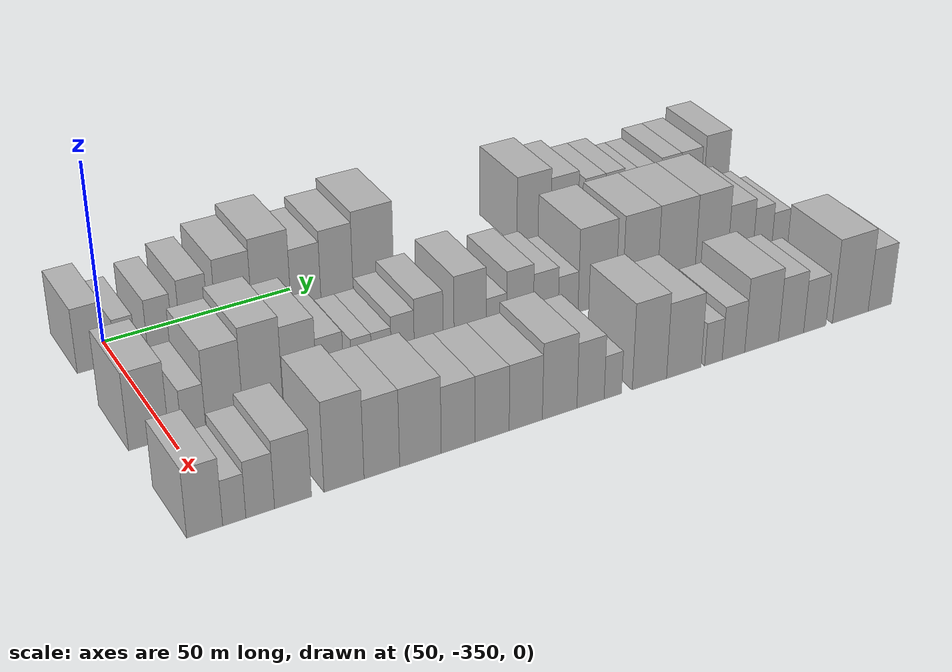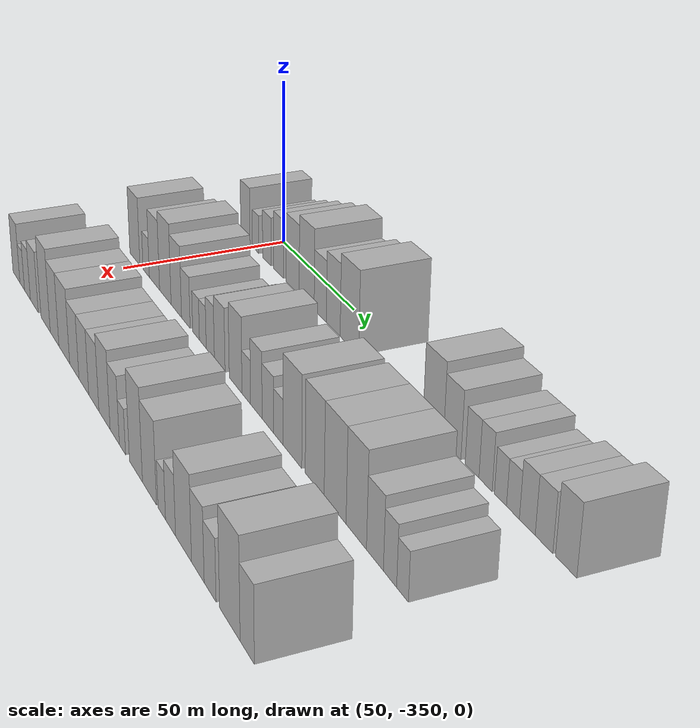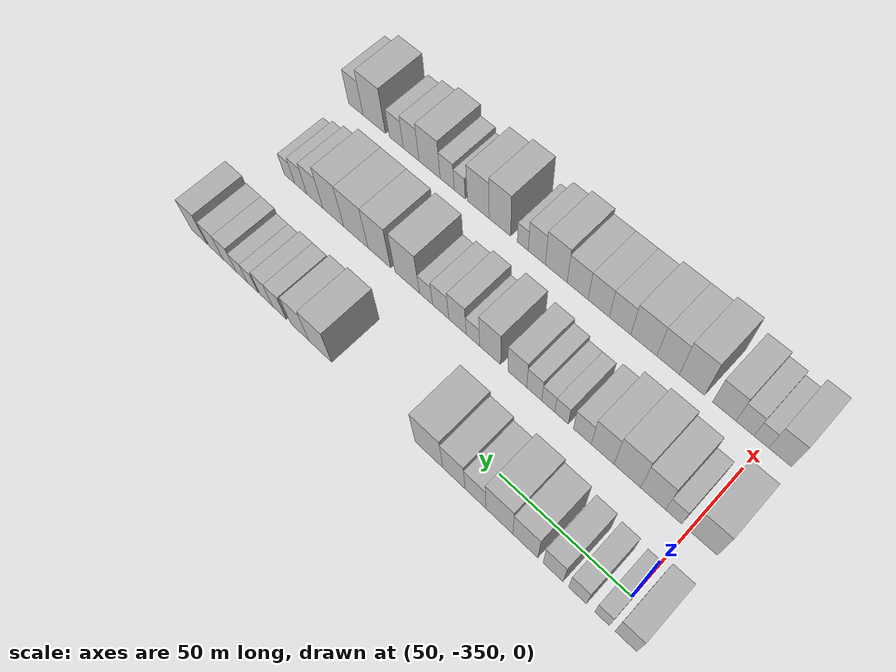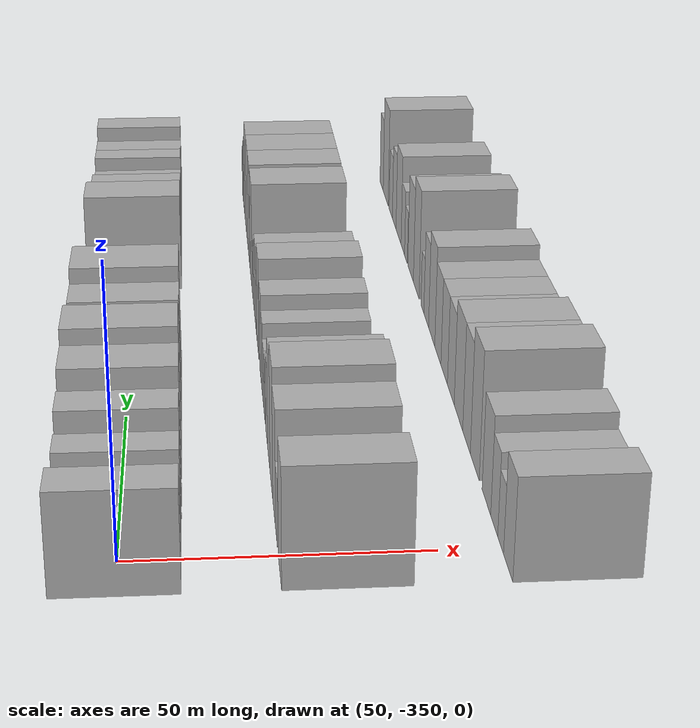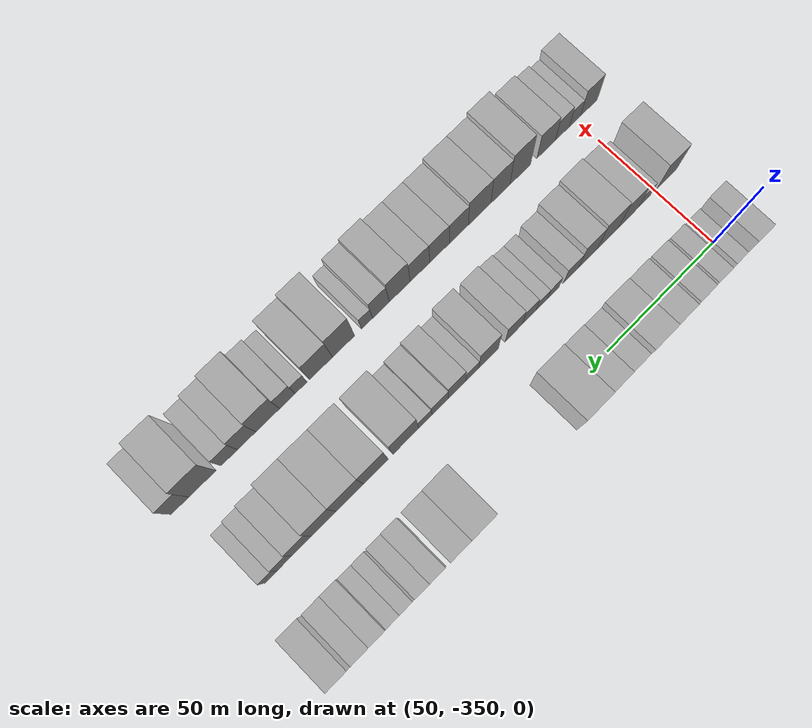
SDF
<sdf version="1.6">
 <world name="default">
  <model name="building_1">
   <static>1</static>
   <pose>50.0000 -356.2087 0 0.000000 0.000000 0.000000</pose>
   <link name="link">
    <pose>0 0 9.00 0 0 0</pose>
    <collision name="collision"><geometry><box><size>20.0000 7.5826 18.0000</size></box></geometry></collision>
    <visual name="visual">
     <cast_shadows>0</cast_shadows>
     <geometry><box><size>20.0000 7.5826 18.0000</size></box></geometry>
     <material>
      <script>
       <uri>model://HANNAS_wall/materials/scripts</uri>
       <uri>model://HANNAS_wall/materials/textures</uri>
       <name>vrc/HANNAS_wall</name>
      </script>
     </material>
    </visual>
   </link>
  </model>
  <model name="building_2">
   <static>1</static>
   <pose>50.0000 -347.7883 0 0.000000 0.000000 0.000000</pose>
   <link name="link">
    <pose>0 0 6.00 0 0 0</pose>
    <collision name="collision"><geometry><box><size>20.0000 5.2582 12.0000</size></box></geometry></collision>
    <visual name="visual">
     <cast_shadows>0</cast_shadows>
     <geometry><box><size>20.0000 5.2582 12.0000</size></box></geometry>
     <material>
      <script>
       <uri>model://HANNAS_wall/materials/scripts</uri>
       <uri>model://HANNAS_wall/materials/textures</uri>
       <name>vrc/HANNAS_wall</name>
      </script>
     </material>
    </visual>
   </link>
  </model>
  <model name="building_3">
   <static>1</static>
   <pose>50.0000 -338.8902 0 0.000000 0.000000 0.000000</pose>
   <link name="link">
    <pose>0 0 7.50 0 0 0</pose>
    <collision name="collision"><geometry><box><size>20.0000 6.5379 15.0000</size></box></geometry></collision>
    <visual name="visual">
     <cast_shadows>0</cast_shadows>
     <geometry><box><size>20.0000 6.5379 15.0000</size></box></geometry>
     <material>
      <script>
       <uri>model://HANNAS_wall/materials/scripts</uri>
       <uri>model://HANNAS_wall/materials/textures</uri>
       <name>vrc/HANNAS_wall</name>
      </script>
     </material>
    </visual>
   </link>
  </model>
  <model name="building_4">
   <static>1</static>
   <pose>50.0000 -329.9099 0 0.000000 0.000000 0.000000</pose>
   <link name="link">
    <pose>0 0 9.00 0 0 0</pose>
    <collision name="collision"><geometry><box><size>20.0000 7.4226 18.0000</size></box></geometry></collision>
    <visual name="visual">
     <cast_shadows>0</cast_shadows>
     <geometry><box><size>20.0000 7.4226 18.0000</size></box></geometry>
     <material>
      <script>
       <uri>model://HANNAS_wall/materials/scripts</uri>
       <uri>model://HANNAS_wall/materials/textures</uri>
       <name>vrc/HANNAS_wall</name>
      </script>
     </material>
    </visual>
   </link>
  </model>
  <model name="building_5">
   <static>1</static>
   <pose>50.0000 -319.4293 0 0.000000 0.000000 0.000000</pose>
   <link name="link">
    <pose>0 0 10.50 0 0 0</pose>
    <collision name="collision"><geometry><box><size>20.0000 9.5387 21.0000</size></box></geometry></collision>
    <visual name="visual">
     <cast_shadows>0</cast_shadows>
     <geometry><box><size>20.0000 9.5387 21.0000</size></box></geometry>
     <material>
      <script>
       <uri>model://HANNAS_wall/materials/scripts</uri>
       <uri>model://HANNAS_wall/materials/textures</uri>
       <name>vrc/HANNAS_wall</name>
      </script>
     </material>
    </visual>
   </link>
  </model>
  <model name="building_6">
   <static>1</static>
   <pose>50.0000 -309.4172 0 0.000000 0.000000 0.000000</pose>
   <link name="link">
    <pose>0 0 12.00 0 0 0</pose>
    <collision name="collision"><geometry><box><size>20.0000 10.4856 24.0000</size></box></geometry></collision>
    <visual name="visual">
     <cast_shadows>0</cast_shadows>
     <geometry><box><size>20.0000 10.4856 24.0000</size></box></geometry>
     <material>
      <script>
       <uri>model://HANNAS_wall/materials/scripts</uri>
       <uri>model://HANNAS_wall/materials/textures</uri>
       <name>vrc/HANNAS_wall</name>
      </script>
     </material>
    </visual>
   </link>
  </model>
  <model name="building_7">
   <static>1</static>
   <pose>50.0000 -300.0538 0 0.000000 0.000000 0.000000</pose>
   <link name="link">
    <pose>0 0 9.00 0 0 0</pose>
    <collision name="collision"><geometry><box><size>20.0000 8.2411 18.0000</size></box></geometry></collision>
    <visual name="visual">
     <cast_shadows>0</cast_shadows>
     <geometry><box><size>20.0000 8.2411 18.0000</size></box></geometry>
     <material>
      <script>
       <uri>model://HANNAS_wall/materials/scripts</uri>
       <uri>model://HANNAS_wall/materials/textures</uri>
       <name>vrc/HANNAS_wall</name>
      </script>
     </material>
    </visual>
   </link>
  </model>
  <model name="building_8">
   <static>1</static>
   <pose>50.0000 -291.4383 0 0.000000 0.000000 0.000000</pose>
   <link name="link">
    <pose>0 0 10.50 0 0 0</pose>
    <collision name="collision"><geometry><box><size>20.0000 8.9898 21.0000</size></box></geometry></collision>
    <visual name="visual">
     <cast_shadows>0</cast_shadows>
     <geometry><box><size>20.0000 8.9898 21.0000</size></box></geometry>
     <material>
      <script>
       <uri>model://HANNAS_wall/materials/scripts</uri>
       <uri>model://HANNAS_wall/materials/textures</uri>
       <name>vrc/HANNAS_wall</name>
      </script>
     </material>
    </visual>
   </link>
  </model>
  <model name="building_9">
   <static>1</static>
   <pose>50.0000 -281.1544 0 0.000000 0.000000 0.000000</pose>
   <link name="link">
    <pose>0 0 12.00 0 0 0</pose>
    <collision name="collision"><geometry><box><size>20.0000 11.5780 24.0000</size></box></geometry></collision>
    <visual name="visual">
     <cast_shadows>0</cast_shadows>
     <geometry><box><size>20.0000 11.5780 24.0000</size></box></geometry>
     <material>
      <script>
       <uri>model://HANNAS_wall/materials/scripts</uri>
       <uri>model://HANNAS_wall/materials/textures</uri>
       <name>vrc/HANNAS_wall</name>
      </script>
     </material>
    </visual>
   </link>
  </model>
  <model name="building_10">
   <static>1</static>
   <pose>50.0000 -233.7191 0 0.000000 0.000000 0.000000</pose>
   <link name="link">
    <pose>0 0 10.50 0 0 0</pose>
    <collision name="collision"><geometry><box><size>20.0000 10.4308 21.0000</size></box></geometry></collision>
    <visual name="visual">
     <cast_shadows>0</cast_shadows>
     <geometry><box><size>20.0000 10.4308 21.0000</size></box></geometry>
     <material>
      <script>
       <uri>model://HANNAS_wall/materials/scripts</uri>
       <uri>model://HANNAS_wall/materials/textures</uri>
       <name>vrc/HANNAS_wall</name>
      </script>
     </material>
    </visual>
   </link>
  </model>
  <model name="building_11">
   <static>1</static>
   <pose>50.0000 -224.2286 0 0.000000 0.000000 0.000000</pose>
   <link name="link">
    <pose>0 0 9.00 0 0 0</pose>
    <collision name="collision"><geometry><box><size>20.0000 8.5502 18.0000</size></box></geometry></collision>
    <visual name="visual">
     <cast_shadows>0</cast_shadows>
     <geometry><box><size>20.0000 8.5502 18.0000</size></box></geometry>
     <material>
      <script>
       <uri>model://HANNAS_wall/materials/scripts</uri>
       <uri>model://HANNAS_wall/materials/textures</uri>
       <name>vrc/HANNAS_wall</name>
      </script>
     </material>
    </visual>
   </link>
  </model>
  <model name="building_12">
   <static>1</static>
   <pose>50.0000 -214.7280 0 0.000000 0.000000 0.000000</pose>
   <link name="link">
    <pose>0 0 7.50 0 0 0</pose>
    <collision name="collision"><geometry><box><size>20.0000 6.4510 15.0000</size></box></geometry></collision>
    <visual name="visual">
     <cast_shadows>0</cast_shadows>
     <geometry><box><size>20.0000 6.4510 15.0000</size></box></geometry>
     <material>
      <script>
       <uri>model://HANNAS_wall/materials/scripts</uri>
       <uri>model://HANNAS_wall/materials/textures</uri>
       <name>vrc/HANNAS_wall</name>
      </script>
     </material>
    </visual>
   </link>
  </model>
  <model name="building_13">
   <static>1</static>
   <pose>50.0000 -208.4955 0 0.000000 0.000000 0.000000</pose>
   <link name="link">
    <pose>0 0 7.50 0 0 0</pose>
    <collision name="collision"><geometry><box><size>20.0000 6.0138 15.0000</size></box></geometry></collision>
    <visual name="visual">
     <cast_shadows>0</cast_shadows>
     <geometry><box><size>20.0000 6.0138 15.0000</size></box></geometry>
     <material>
      <script>
       <uri>model://HANNAS_wall/materials/scripts</uri>
       <uri>model://HANNAS_wall/materials/textures</uri>
       <name>vrc/HANNAS_wall</name>
      </script>
     </material>
    </visual>
   </link>
  </model>
  <model name="building_14">
   <static>1</static>
   <pose>50.0000 -201.8346 0 0.000000 0.000000 0.000000</pose>
   <link name="link">
    <pose>0 0 6.00 0 0 0</pose>
    <collision name="collision"><geometry><box><size>20.0000 5.3080 12.0000</size></box></geometry></collision>
    <visual name="visual">
     <cast_shadows>0</cast_shadows>
     <geometry><box><size>20.0000 5.3080 12.0000</size></box></geometry>
     <material>
      <script>
       <uri>model://HANNAS_wall/materials/scripts</uri>
       <uri>model://HANNAS_wall/materials/textures</uri>
       <name>vrc/HANNAS_wall</name>
      </script>
     </material>
    </visual>
   </link>
  </model>
  <model name="building_15">
   <static>1</static>
   <pose>50.0000 -196.4232 0 0.000000 0.000000 0.000000</pose>
   <link name="link">
    <pose>0 0 6.00 0 0 0</pose>
    <collision name="collision"><geometry><box><size>20.0000 5.5147 12.0000</size></box></geometry></collision>
    <visual name="visual">
     <cast_shadows>0</cast_shadows>
     <geometry><box><size>20.0000 5.5147 12.0000</size></box></geometry>
     <material>
      <script>
       <uri>model://HANNAS_wall/materials/scripts</uri>
       <uri>model://HANNAS_wall/materials/textures</uri>
       <name>vrc/HANNAS_wall</name>
      </script>
     </material>
    </visual>
   </link>
  </model>
  <model name="building_16">
   <static>1</static>
   <pose>50.0000 -190.3855 0 0.000000 0.000000 0.000000</pose>
   <link name="link">
    <pose>0 0 7.50 0 0 0</pose>
    <collision name="collision"><geometry><box><size>20.0000 6.5609 15.0000</size></box></geometry></collision>
    <visual name="visual">
     <cast_shadows>0</cast_shadows>
     <geometry><box><size>20.0000 6.5609 15.0000</size></box></geometry>
     <material>
      <script>
       <uri>model://HANNAS_wall/materials/scripts</uri>
       <uri>model://HANNAS_wall/materials/textures</uri>
       <name>vrc/HANNAS_wall</name>
      </script>
     </material>
    </visual>
   </link>
  </model>
  <model name="building_17">
   <static>1</static>
   <pose>50.0000 -183.5652 0 0.000000 0.000000 0.000000</pose>
   <link name="link">
    <pose>0 0 7.50 0 0 0</pose>
    <collision name="collision"><geometry><box><size>20.0000 7.0797 15.0000</size></box></geometry></collision>
    <visual name="visual">
     <cast_shadows>0</cast_shadows>
     <geometry><box><size>20.0000 7.0797 15.0000</size></box></geometry>
     <material>
      <script>
       <uri>model://HANNAS_wall/materials/scripts</uri>
       <uri>model://HANNAS_wall/materials/textures</uri>
       <name>vrc/HANNAS_wall</name>
      </script>
     </material>
    </visual>
   </link>
  </model>
  <model name="building_18">
   <static>1</static>
   <pose>50.0000 -174.9120 0 0.000000 0.000000 0.000000</pose>
   <link name="link">
    <pose>0 0 9.00 0 0 0</pose>
    <collision name="collision"><geometry><box><size>20.0000 8.2267 18.0000</size></box></geometry></collision>
    <visual name="visual">
     <cast_shadows>0</cast_shadows>
     <geometry><box><size>20.0000 8.2267 18.0000</size></box></geometry>
     <material>
      <script>
       <uri>model://HANNAS_wall/materials/scripts</uri>
       <uri>model://HANNAS_wall/materials/textures</uri>
       <name>vrc/HANNAS_wall</name>
      </script>
     </material>
    </visual>
   </link>
  </model>
  <model name="building_78">
   <static>1</static>
   <pose>85.0000 -355.1636 0 0.000000 0.000000 0.000000</pose>
   <link name="link">
    <pose>0 0 10.50 0 0 0</pose>
    <collision name="collision"><geometry><box><size>20.0000 9.6728 21.0000</size></box></geometry></collision>
    <visual name="visual">
     <cast_shadows>0</cast_shadows>
     <geometry><box><size>20.0000 9.6728 21.0000</size></box></geometry>
     <material>
      <script>
       <uri>model://HANNAS_wall/materials/scripts</uri>
       <uri>model://HANNAS_wall/materials/textures</uri>
       <name>vrc/HANNAS_wall</name>
      </script>
     </material>
    </visual>
   </link>
  </model>
  <model name="building_79">
   <static>1</static>
   <pose>85.0000 -344.3812 0 0.000000 0.000000 0.000000</pose>
   <link name="link">
    <pose>0 0 6.00 0 0 0</pose>
    <collision name="collision"><geometry><box><size>20.0000 5.8922 12.0000</size></box></geometry></collision>
    <visual name="visual">
     <cast_shadows>0</cast_shadows>
     <geometry><box><size>20.0000 5.8922 12.0000</size></box></geometry>
     <material>
      <script>
       <uri>model://HANNAS_wall/materials/scripts</uri>
       <uri>model://HANNAS_wall/materials/textures</uri>
       <name>vrc/HANNAS_wall</name>
      </script>
     </material>
    </visual>
   </link>
  </model>
  <model name="building_80">
   <static>1</static>
   <pose>85.0000 -336.8071 0 0.000000 0.000000 0.000000</pose>
   <link name="link">
    <pose>0 0 10.50 0 0 0</pose>
    <collision name="collision"><geometry><box><size>20.0000 9.2560 21.0000</size></box></geometry></collision>
    <visual name="visual">
     <cast_shadows>0</cast_shadows>
     <geometry><box><size>20.0000 9.2560 21.0000</size></box></geometry>
     <material>
      <script>
       <uri>model://HANNAS_wall/materials/scripts</uri>
       <uri>model://HANNAS_wall/materials/textures</uri>
       <name>vrc/HANNAS_wall</name>
      </script>
     </material>
    </visual>
   </link>
  </model>
  <model name="building_81">
   <static>1</static>
   <pose>85.0000 -327.1585 0 0.000000 0.000000 0.000000</pose>
   <link name="link">
    <pose>0 0 12.00 0 0 0</pose>
    <collision name="collision"><geometry><box><size>20.0000 10.0411 24.0000</size></box></geometry></collision>
    <visual name="visual">
     <cast_shadows>0</cast_shadows>
     <geometry><box><size>20.0000 10.0411 24.0000</size></box></geometry>
     <material>
      <script>
       <uri>model://HANNAS_wall/materials/scripts</uri>
       <uri>model://HANNAS_wall/materials/textures</uri>
       <name>vrc/HANNAS_wall</name>
      </script>
     </material>
    </visual>
   </link>
  </model>
  <model name="building_82">
   <static>1</static>
   <pose>85.0000 -317.7506 0 0.000000 0.000000 0.000000</pose>
   <link name="link">
    <pose>0 0 10.50 0 0 0</pose>
    <collision name="collision"><geometry><box><size>20.0000 8.7748 21.0000</size></box></geometry></collision>
    <visual name="visual">
     <cast_shadows>0</cast_shadows>
     <geometry><box><size>20.0000 8.7748 21.0000</size></box></geometry>
     <material>
      <script>
       <uri>model://HANNAS_wall/materials/scripts</uri>
       <uri>model://HANNAS_wall/materials/textures</uri>
       <name>vrc/HANNAS_wall</name>
      </script>
     </material>
    </visual>
   </link>
  </model>
  <model name="building_83">
   <static>1</static>
   <pose>85.0000 -309.8581 0 0.000000 0.000000 0.000000</pose>
   <link name="link">
    <pose>0 0 7.50 0 0 0</pose>
    <collision name="collision"><geometry><box><size>20.0000 7.0102 15.0000</size></box></geometry></collision>
    <visual name="visual">
     <cast_shadows>0</cast_shadows>
     <geometry><box><size>20.0000 7.0102 15.0000</size></box></geometry>
     <material>
      <script>
       <uri>model://HANNAS_wall/materials/scripts</uri>
       <uri>model://HANNAS_wall/materials/textures</uri>
       <name>vrc/HANNAS_wall</name>
      </script>
     </material>
    </visual>
   </link>
  </model>
  <model name="building_84">
   <static>1</static>
   <pose>85.0000 -301.6786 0 0.000000 0.000000 0.000000</pose>
   <link name="link">
    <pose>0 0 6.00 0 0 0</pose>
    <collision name="collision"><geometry><box><size>20.0000 5.3486 12.0000</size></box></geometry></collision>
    <visual name="visual">
     <cast_shadows>0</cast_shadows>
     <geometry><box><size>20.0000 5.3486 12.0000</size></box></geometry>
     <material>
      <script>
       <uri>model://HANNAS_wall/materials/scripts</uri>
       <uri>model://HANNAS_wall/materials/textures</uri>
       <name>vrc/HANNAS_wall</name>
      </script>
     </material>
    </visual>
   </link>
  </model>
  <model name="building_85">
   <static>1</static>
   <pose>85.0000 -296.3774 0 0.000000 0.000000 0.000000</pose>
   <link name="link">
    <pose>0 0 6.00 0 0 0</pose>
    <collision name="collision"><geometry><box><size>20.0000 5.2538 12.0000</size></box></geometry></collision>
    <visual name="visual">
     <cast_shadows>0</cast_shadows>
     <geometry><box><size>20.0000 5.2538 12.0000</size></box></geometry>
     <material>
      <script>
       <uri>model://HANNAS_wall/materials/scripts</uri>
       <uri>model://HANNAS_wall/materials/textures</uri>
       <name>vrc/HANNAS_wall</name>
      </script>
     </material>
    </visual>
   </link>
  </model>
  <model name="building_86">
   <static>1</static>
   <pose>85.0000 -290.6680 0 0.000000 0.000000 0.000000</pose>
   <link name="link">
    <pose>0 0 7.50 0 0 0</pose>
    <collision name="collision"><geometry><box><size>20.0000 6.1652 15.0000</size></box></geometry></collision>
    <visual name="visual">
     <cast_shadows>0</cast_shadows>
     <geometry><box><size>20.0000 6.1652 15.0000</size></box></geometry>
     <material>
      <script>
       <uri>model://HANNAS_wall/materials/scripts</uri>
       <uri>model://HANNAS_wall/materials/textures</uri>
       <name>vrc/HANNAS_wall</name>
      </script>
     </material>
    </visual>
   </link>
  </model>
  <model name="building_87">
   <static>1</static>
   <pose>85.0000 -283.6698 0 0.000000 0.000000 0.000000</pose>
   <link name="link">
    <pose>0 0 9.00 0 0 0</pose>
    <collision name="collision"><geometry><box><size>20.0000 7.8310 18.0000</size></box></geometry></collision>
    <visual name="visual">
     <cast_shadows>0</cast_shadows>
     <geometry><box><size>20.0000 7.8310 18.0000</size></box></geometry>
     <material>
      <script>
       <uri>model://HANNAS_wall/materials/scripts</uri>
       <uri>model://HANNAS_wall/materials/textures</uri>
       <name>vrc/HANNAS_wall</name>
      </script>
     </material>
    </visual>
   </link>
  </model>
  <model name="building_88">
   <static>1</static>
   <pose>85.0000 -272.3083 0 0.000000 0.000000 0.000000</pose>
   <link name="link">
    <pose>0 0 10.50 0 0 0</pose>
    <collision name="collision"><geometry><box><size>20.0000 8.8920 21.0000</size></box></geometry></collision>
    <visual name="visual">
     <cast_shadows>0</cast_shadows>
     <geometry><box><size>20.0000 8.8920 21.0000</size></box></geometry>
     <material>
      <script>
       <uri>model://HANNAS_wall/materials/scripts</uri>
       <uri>model://HANNAS_wall/materials/textures</uri>
       <name>vrc/HANNAS_wall</name>
      </script>
     </material>
    </visual>
   </link>
  </model>
  <model name="building_89">
   <static>1</static>
   <pose>85.0000 -264.9860 0 0.000000 0.000000 0.000000</pose>
   <link name="link">
    <pose>0 0 6.00 0 0 0</pose>
    <collision name="collision"><geometry><box><size>20.0000 5.7527 12.0000</size></box></geometry></collision>
    <visual name="visual">
     <cast_shadows>0</cast_shadows>
     <geometry><box><size>20.0000 5.7527 12.0000</size></box></geometry>
     <material>
      <script>
       <uri>model://HANNAS_wall/materials/scripts</uri>
       <uri>model://HANNAS_wall/materials/textures</uri>
       <name>vrc/HANNAS_wall</name>
      </script>
     </material>
    </visual>
   </link>
  </model>
  <model name="building_90">
   <static>1</static>
   <pose>85.0000 -258.3056 0 0.000000 0.000000 0.000000</pose>
   <link name="link">
    <pose>0 0 9.00 0 0 0</pose>
    <collision name="collision"><geometry><box><size>20.0000 7.6083 18.0000</size></box></geometry></collision>
    <visual name="visual">
     <cast_shadows>0</cast_shadows>
     <geometry><box><size>20.0000 7.6083 18.0000</size></box></geometry>
     <material>
      <script>
       <uri>model://HANNAS_wall/materials/scripts</uri>
       <uri>model://HANNAS_wall/materials/textures</uri>
       <name>vrc/HANNAS_wall</name>
      </script>
     </material>
    </visual>
   </link>
  </model>
  <model name="building_91">
   <static>1</static>
   <pose>85.0000 -250.9110 0 0.000000 0.000000 0.000000</pose>
   <link name="link">
    <pose>0 0 7.50 0 0 0</pose>
    <collision name="collision"><geometry><box><size>20.0000 7.1808 15.0000</size></box></geometry></collision>
    <visual name="visual">
     <cast_shadows>0</cast_shadows>
     <geometry><box><size>20.0000 7.1808 15.0000</size></box></geometry>
     <material>
      <script>
       <uri>model://HANNAS_wall/materials/scripts</uri>
       <uri>model://HANNAS_wall/materials/textures</uri>
       <name>vrc/HANNAS_wall</name>
      </script>
     </material>
    </visual>
   </link>
  </model>
  <model name="building_92">
   <static>1</static>
   <pose>85.0000 -244.4038 0 0.000000 0.000000 0.000000</pose>
   <link name="link">
    <pose>0 0 6.00 0 0 0</pose>
    <collision name="collision"><geometry><box><size>20.0000 5.8337 12.0000</size></box></geometry></collision>
    <visual name="visual">
     <cast_shadows>0</cast_shadows>
     <geometry><box><size>20.0000 5.8337 12.0000</size></box></geometry>
     <material>
      <script>
       <uri>model://HANNAS_wall/materials/scripts</uri>
       <uri>model://HANNAS_wall/materials/textures</uri>
       <name>vrc/HANNAS_wall</name>
      </script>
     </material>
    </visual>
   </link>
  </model>
  <model name="building_93">
   <static>1</static>
   <pose>85.0000 -235.8939 0 0.000000 0.000000 0.000000</pose>
   <link name="link">
    <pose>0 0 12.00 0 0 0</pose>
    <collision name="collision"><geometry><box><size>20.0000 11.1860 24.0000</size></box></geometry></collision>
    <visual name="visual">
     <cast_shadows>0</cast_shadows>
     <geometry><box><size>20.0000 11.1860 24.0000</size></box></geometry>
     <material>
      <script>
       <uri>model://HANNAS_wall/materials/scripts</uri>
       <uri>model://HANNAS_wall/materials/textures</uri>
       <name>vrc/HANNAS_wall</name>
      </script>
     </material>
    </visual>
   </link>
  </model>
  <model name="building_94">
   <static>1</static>
   <pose>85.0000 -223.0156 0 0.000000 0.000000 0.000000</pose>
   <link name="link">
    <pose>0 0 12.00 0 0 0</pose>
    <collision name="collision"><geometry><box><size>20.0000 10.5706 24.0000</size></box></geometry></collision>
    <visual name="visual">
     <cast_shadows>0</cast_shadows>
     <geometry><box><size>20.0000 10.5706 24.0000</size></box></geometry>
     <material>
      <script>
       <uri>model://HANNAS_wall/materials/scripts</uri>
       <uri>model://HANNAS_wall/materials/textures</uri>
       <name>vrc/HANNAS_wall</name>
      </script>
     </material>
    </visual>
   </link>
  </model>
  <model name="building_95">
   <static>1</static>
   <pose>85.0000 -211.9395 0 0.000000 0.000000 0.000000</pose>
   <link name="link">
    <pose>0 0 12.00 0 0 0</pose>
    <collision name="collision"><geometry><box><size>20.0000 11.5815 24.0000</size></box></geometry></collision>
    <visual name="visual">
     <cast_shadows>0</cast_shadows>
     <geometry><box><size>20.0000 11.5815 24.0000</size></box></geometry>
     <material>
      <script>
       <uri>model://HANNAS_wall/materials/scripts</uri>
       <uri>model://HANNAS_wall/materials/textures</uri>
       <name>vrc/HANNAS_wall</name>
      </script>
     </material>
    </visual>
   </link>
  </model>
  <model name="building_96">
   <static>1</static>
   <pose>85.0000 -201.0471 0 0.000000 0.000000 0.000000</pose>
   <link name="link">
    <pose>0 0 12.00 0 0 0</pose>
    <collision name="collision"><geometry><box><size>20.0000 10.2033 24.0000</size></box></geometry></collision>
    <visual name="visual">
     <cast_shadows>0</cast_shadows>
     <geometry><box><size>20.0000 10.2033 24.0000</size></box></geometry>
     <material>
      <script>
       <uri>model://HANNAS_wall/materials/scripts</uri>
       <uri>model://HANNAS_wall/materials/textures</uri>
       <name>vrc/HANNAS_wall</name>
      </script>
     </material>
    </visual>
   </link>
  </model>
  <model name="building_97">
   <static>1</static>
   <pose>85.0000 -191.9038 0 0.000000 0.000000 0.000000</pose>
   <link name="link">
    <pose>0 0 9.00 0 0 0</pose>
    <collision name="collision"><geometry><box><size>20.0000 8.0834 18.0000</size></box></geometry></collision>
    <visual name="visual">
     <cast_shadows>0</cast_shadows>
     <geometry><box><size>20.0000 8.0834 18.0000</size></box></geometry>
     <material>
      <script>
       <uri>model://HANNAS_wall/materials/scripts</uri>
       <uri>model://HANNAS_wall/materials/textures</uri>
       <name>vrc/HANNAS_wall</name>
      </script>
     </material>
    </visual>
   </link>
  </model>
  <model name="building_98">
   <static>1</static>
   <pose>85.0000 -184.8117 0 0.000000 0.000000 0.000000</pose>
   <link name="link">
    <pose>0 0 7.50 0 0 0</pose>
    <collision name="collision"><geometry><box><size>20.0000 6.1007 15.0000</size></box></geometry></collision>
    <visual name="visual">
     <cast_shadows>0</cast_shadows>
     <geometry><box><size>20.0000 6.1007 15.0000</size></box></geometry>
     <material>
      <script>
       <uri>model://HANNAS_wall/materials/scripts</uri>
       <uri>model://HANNAS_wall/materials/textures</uri>
       <name>vrc/HANNAS_wall</name>
      </script>
     </material>
    </visual>
   </link>
  </model>
  <model name="building_99">
   <static>1</static>
   <pose>85.0000 -179.1264 0 0.000000 0.000000 0.000000</pose>
   <link name="link">
    <pose>0 0 6.00 0 0 0</pose>
    <collision name="collision"><geometry><box><size>20.0000 5.2697 12.0000</size></box></geometry></collision>
    <visual name="visual">
     <cast_shadows>0</cast_shadows>
     <geometry><box><size>20.0000 5.2697 12.0000</size></box></geometry>
     <material>
      <script>
       <uri>model://HANNAS_wall/materials/scripts</uri>
       <uri>model://HANNAS_wall/materials/textures</uri>
       <name>vrc/HANNAS_wall</name>
      </script>
     </material>
    </visual>
   </link>
  </model>
  <model name="building_164">
   <static>1</static>
   <pose>120.0000 -355.9063 0 0.000000 0.000000 0.000000</pose>
   <link name="link">
    <pose>0 0 9.00 0 0 0</pose>
    <collision name="collision"><geometry><box><size>20.0000 8.1875 18.0000</size></box></geometry></collision>
    <visual name="visual">
     <cast_shadows>0</cast_shadows>
     <geometry><box><size>20.0000 8.1875 18.0000</size></box></geometry>
     <material>
      <script>
       <uri>model://HANNAS_wall/materials/scripts</uri>
       <uri>model://HANNAS_wall/materials/textures</uri>
       <name>vrc/HANNAS_wall</name>
      </script>
     </material>
    </visual>
   </link>
  </model>
  <model name="building_165">
   <static>1</static>
   <pose>120.0000 -349.1351 0 0.000000 0.000000 0.000000</pose>
   <link name="link">
    <pose>0 0 6.00 0 0 0</pose>
    <collision name="collision"><geometry><box><size>20.0000 5.3548 12.0000</size></box></geometry></collision>
    <visual name="visual">
     <cast_shadows>0</cast_shadows>
     <geometry><box><size>20.0000 5.3548 12.0000</size></box></geometry>
     <material>
      <script>
       <uri>model://HANNAS_wall/materials/scripts</uri>
       <uri>model://HANNAS_wall/materials/textures</uri>
       <name>vrc/HANNAS_wall</name>
      </script>
     </material>
    </visual>
   </link>
  </model>
  <model name="building_166">
   <static>1</static>
   <pose>120.0000 -343.1144 0 0.000000 0.000000 0.000000</pose>
   <link name="link">
    <pose>0 0 7.50 0 0 0</pose>
    <collision name="collision"><geometry><box><size>20.0000 6.6867 15.0000</size></box></geometry></collision>
    <visual name="visual">
     <cast_shadows>0</cast_shadows>
     <geometry><box><size>20.0000 6.6867 15.0000</size></box></geometry>
     <material>
      <script>
       <uri>model://HANNAS_wall/materials/scripts</uri>
       <uri>model://HANNAS_wall/materials/textures</uri>
       <name>vrc/HANNAS_wall</name>
      </script>
     </material>
    </visual>
   </link>
  </model>
  <model name="building_167">
   <static>1</static>
   <pose>120.0000 -335.3991 0 0.000000 0.000000 0.000000</pose>
   <link name="link">
    <pose>0 0 9.00 0 0 0</pose>
    <collision name="collision"><geometry><box><size>20.0000 8.7440 18.0000</size></box></geometry></collision>
    <visual name="visual">
     <cast_shadows>0</cast_shadows>
     <geometry><box><size>20.0000 8.7440 18.0000</size></box></geometry>
     <material>
      <script>
       <uri>model://HANNAS_wall/materials/scripts</uri>
       <uri>model://HANNAS_wall/materials/textures</uri>
       <name>vrc/HANNAS_wall</name>
      </script>
     </material>
    </visual>
   </link>
  </model>
  <model name="building_168">
   <static>1</static>
   <pose>120.0000 -323.1722 0 0.000000 0.000000 0.000000</pose>
   <link name="link">
    <pose>0 0 12.00 0 0 0</pose>
    <collision name="collision"><geometry><box><size>20.0000 9.7097 24.0000</size></box></geometry></collision>
    <visual name="visual">
     <cast_shadows>0</cast_shadows>
     <geometry><box><size>20.0000 9.7097 24.0000</size></box></geometry>
     <material>
      <script>
       <uri>model://HANNAS_wall/materials/scripts</uri>
       <uri>model://HANNAS_wall/materials/textures</uri>
       <name>vrc/HANNAS_wall</name>
      </script>
     </material>
    </visual>
   </link>
  </model>
  <model name="building_169">
   <static>1</static>
   <pose>120.0000 -313.9210 0 0.000000 0.000000 0.000000</pose>
   <link name="link">
    <pose>0 0 10.50 0 0 0</pose>
    <collision name="collision"><geometry><box><size>20.0000 8.7926 21.0000</size></box></geometry></collision>
    <visual name="visual">
     <cast_shadows>0</cast_shadows>
     <geometry><box><size>20.0000 8.7926 21.0000</size></box></geometry>
     <material>
      <script>
       <uri>model://HANNAS_wall/materials/scripts</uri>
       <uri>model://HANNAS_wall/materials/textures</uri>
       <name>vrc/HANNAS_wall</name>
      </script>
     </material>
    </visual>
   </link>
  </model>
  <model name="building_170">
   <static>1</static>
   <pose>120.0000 -304.2930 0 0.000000 0.000000 0.000000</pose>
   <link name="link">
    <pose>0 0 10.50 0 0 0</pose>
    <collision name="collision"><geometry><box><size>20.0000 10.4633 21.0000</size></box></geometry></collision>
    <visual name="visual">
     <cast_shadows>0</cast_shadows>
     <geometry><box><size>20.0000 10.4633 21.0000</size></box></geometry>
     <material>
      <script>
       <uri>model://HANNAS_wall/materials/scripts</uri>
       <uri>model://HANNAS_wall/materials/textures</uri>
       <name>vrc/HANNAS_wall</name>
      </script>
     </material>
    </visual>
   </link>
  </model>
  <model name="building_171">
   <static>1</static>
   <pose>120.0000 -294.6959 0 0.000000 0.000000 0.000000</pose>
   <link name="link">
    <pose>0 0 9.00 0 0 0</pose>
    <collision name="collision"><geometry><box><size>20.0000 8.7310 18.0000</size></box></geometry></collision>
    <visual name="visual">
     <cast_shadows>0</cast_shadows>
     <geometry><box><size>20.0000 8.7310 18.0000</size></box></geometry>
     <material>
      <script>
       <uri>model://HANNAS_wall/materials/scripts</uri>
       <uri>model://HANNAS_wall/materials/textures</uri>
       <name>vrc/HANNAS_wall</name>
      </script>
     </material>
    </visual>
   </link>
  </model>
  <model name="building_172">
   <static>1</static>
   <pose>120.0000 -285.9129 0 0.000000 0.000000 0.000000</pose>
   <link name="link">
    <pose>0 0 9.00 0 0 0</pose>
    <collision name="collision"><geometry><box><size>20.0000 8.8350 18.0000</size></box></geometry></collision>
    <visual name="visual">
     <cast_shadows>0</cast_shadows>
     <geometry><box><size>20.0000 8.8350 18.0000</size></box></geometry>
     <material>
      <script>
       <uri>model://HANNAS_wall/materials/scripts</uri>
       <uri>model://HANNAS_wall/materials/textures</uri>
       <name>vrc/HANNAS_wall</name>
      </script>
     </material>
    </visual>
   </link>
  </model>
  <model name="building_173">
   <static>1</static>
   <pose>120.0000 -277.0877 0 0.000000 0.000000 0.000000</pose>
   <link name="link">
    <pose>0 0 9.00 0 0 0</pose>
    <collision name="collision"><geometry><box><size>20.0000 8.8153 18.0000</size></box></geometry></collision>
    <visual name="visual">
     <cast_shadows>0</cast_shadows>
     <geometry><box><size>20.0000 8.8153 18.0000</size></box></geometry>
     <material>
      <script>
       <uri>model://HANNAS_wall/materials/scripts</uri>
       <uri>model://HANNAS_wall/materials/textures</uri>
       <name>vrc/HANNAS_wall</name>
      </script>
     </material>
    </visual>
   </link>
  </model>
  <model name="building_174">
   <static>1</static>
   <pose>120.0000 -268.0135 0 0.000000 0.000000 0.000000</pose>
   <link name="link">
    <pose>0 0 10.50 0 0 0</pose>
    <collision name="collision"><geometry><box><size>20.0000 9.3332 21.0000</size></box></geometry></collision>
    <visual name="visual">
     <cast_shadows>0</cast_shadows>
     <geometry><box><size>20.0000 9.3332 21.0000</size></box></geometry>
     <material>
      <script>
       <uri>model://HANNAS_wall/materials/scripts</uri>
       <uri>model://HANNAS_wall/materials/textures</uri>
       <name>vrc/HANNAS_wall</name>
      </script>
     </material>
    </visual>
   </link>
  </model>
  <model name="building_175">
   <static>1</static>
   <pose>120.0000 -259.6228 0 0.000000 0.000000 0.000000</pose>
   <link name="link">
    <pose>0 0 9.00 0 0 0</pose>
    <collision name="collision"><geometry><box><size>20.0000 7.4483 18.0000</size></box></geometry></collision>
    <visual name="visual">
     <cast_shadows>0</cast_shadows>
     <geometry><box><size>20.0000 7.4483 18.0000</size></box></geometry>
     <material>
      <script>
       <uri>model://HANNAS_wall/materials/scripts</uri>
       <uri>model://HANNAS_wall/materials/textures</uri>
       <name>vrc/HANNAS_wall</name>
      </script>
     </material>
    </visual>
   </link>
  </model>
  <model name="building_176">
   <static>1</static>
   <pose>120.0000 -253.4829 0 0.000000 0.000000 0.000000</pose>
   <link name="link">
    <pose>0 0 6.00 0 0 0</pose>
    <collision name="collision"><geometry><box><size>20.0000 4.8316 12.0000</size></box></geometry></collision>
    <visual name="visual">
     <cast_shadows>0</cast_shadows>
     <geometry><box><size>20.0000 4.8316 12.0000</size></box></geometry>
     <material>
      <script>
       <uri>model://HANNAS_wall/materials/scripts</uri>
       <uri>model://HANNAS_wall/materials/textures</uri>
       <name>vrc/HANNAS_wall</name>
      </script>
     </material>
    </visual>
   </link>
  </model>
  <model name="building_177">
   <static>1</static>
   <pose>120.0000 -243.2223 0 0.000000 0.000000 0.000000</pose>
   <link name="link">
    <pose>0 0 12.00 0 0 0</pose>
    <collision name="collision"><geometry><box><size>20.0000 9.6896 24.0000</size></box></geometry></collision>
    <visual name="visual">
     <cast_shadows>0</cast_shadows>
     <geometry><box><size>20.0000 9.6896 24.0000</size></box></geometry>
     <material>
      <script>
       <uri>model://HANNAS_wall/materials/scripts</uri>
       <uri>model://HANNAS_wall/materials/textures</uri>
       <name>vrc/HANNAS_wall</name>
      </script>
     </material>
    </visual>
   </link>
  </model>
  <model name="building_178">
   <static>1</static>
   <pose>120.0000 -233.3993 0 0.000000 0.000000 0.000000</pose>
   <link name="link">
    <pose>0 0 10.50 0 0 0</pose>
    <collision name="collision"><geometry><box><size>20.0000 9.9565 21.0000</size></box></geometry></collision>
    <visual name="visual">
     <cast_shadows>0</cast_shadows>
     <geometry><box><size>20.0000 9.9565 21.0000</size></box></geometry>
     <material>
      <script>
       <uri>model://HANNAS_wall/materials/scripts</uri>
       <uri>model://HANNAS_wall/materials/textures</uri>
       <name>vrc/HANNAS_wall</name>
      </script>
     </material>
    </visual>
   </link>
  </model>
  <model name="building_179">
   <static>1</static>
   <pose>120.0000 -224.8566 0 0.000000 0.000000 0.000000</pose>
   <link name="link">
    <pose>0 0 6.00 0 0 0</pose>
    <collision name="collision"><geometry><box><size>20.0000 5.1288 12.0000</size></box></geometry></collision>
    <visual name="visual">
     <cast_shadows>0</cast_shadows>
     <geometry><box><size>20.0000 5.1288 12.0000</size></box></geometry>
     <material>
      <script>
       <uri>model://HANNAS_wall/materials/scripts</uri>
       <uri>model://HANNAS_wall/materials/textures</uri>
       <name>vrc/HANNAS_wall</name>
      </script>
     </material>
    </visual>
   </link>
  </model>
  <model name="building_180">
   <static>1</static>
   <pose>120.0000 -218.9718 0 0.000000 0.000000 0.000000</pose>
   <link name="link">
    <pose>0 0 7.50 0 0 0</pose>
    <collision name="collision"><geometry><box><size>20.0000 6.6410 15.0000</size></box></geometry></collision>
    <visual name="visual">
     <cast_shadows>0</cast_shadows>
     <geometry><box><size>20.0000 6.6410 15.0000</size></box></geometry>
     <material>
      <script>
       <uri>model://HANNAS_wall/materials/scripts</uri>
       <uri>model://HANNAS_wall/materials/textures</uri>
       <name>vrc/HANNAS_wall</name>
      </script>
     </material>
    </visual>
   </link>
  </model>
  <model name="building_181">
   <static>1</static>
   <pose>120.0000 -210.5826 0 0.000000 0.000000 0.000000</pose>
   <link name="link">
    <pose>0 0 10.50 0 0 0</pose>
    <collision name="collision"><geometry><box><size>20.0000 10.1374 21.0000</size></box></geometry></collision>
    <visual name="visual">
     <cast_shadows>0</cast_shadows>
     <geometry><box><size>20.0000 10.1374 21.0000</size></box></geometry>
     <material>
      <script>
       <uri>model://HANNAS_wall/materials/scripts</uri>
       <uri>model://HANNAS_wall/materials/textures</uri>
       <name>vrc/HANNAS_wall</name>
      </script>
     </material>
    </visual>
   </link>
  </model>
  <model name="building_182">
   <static>1</static>
   <pose>120.0000 -201.6924 0 0.000000 0.000000 0.000000</pose>
   <link name="link">
    <pose>0 0 9.00 0 0 0</pose>
    <collision name="collision"><geometry><box><size>20.0000 7.6429 18.0000</size></box></geometry></collision>
    <visual name="visual">
     <cast_shadows>0</cast_shadows>
     <geometry><box><size>20.0000 7.6429 18.0000</size></box></geometry>
     <material>
      <script>
       <uri>model://HANNAS_wall/materials/scripts</uri>
       <uri>model://HANNAS_wall/materials/textures</uri>
       <name>vrc/HANNAS_wall</name>
      </script>
     </material>
    </visual>
   </link>
  </model>
  <model name="building_183">
   <static>1</static>
   <pose>120.0000 -194.4155 0 0.000000 0.000000 0.000000</pose>
   <link name="link">
    <pose>0 0 7.50 0 0 0</pose>
    <collision name="collision"><geometry><box><size>20.0000 6.9109 15.0000</size></box></geometry></collision>
    <visual name="visual">
     <cast_shadows>0</cast_shadows>
     <geometry><box><size>20.0000 6.9109 15.0000</size></box></geometry>
     <material>
      <script>
       <uri>model://HANNAS_wall/materials/scripts</uri>
       <uri>model://HANNAS_wall/materials/textures</uri>
       <name>vrc/HANNAS_wall</name>
      </script>
     </material>
    </visual>
   </link>
  </model>
  <model name="building_184">
   <static>1</static>
   <pose>120.0000 -183.3454 0 0.000000 0.000000 0.000000</pose>
   <link name="link">
    <pose>0 0 12.00 0 0 0</pose>
    <collision name="collision"><geometry><box><size>20.0000 11.2293 24.0000</size></box></geometry></collision>
    <visual name="visual">
     <cast_shadows>0</cast_shadows>
     <geometry><box><size>20.0000 11.2293 24.0000</size></box></geometry>
     <material>
      <script>
       <uri>model://HANNAS_wall/materials/scripts</uri>
       <uri>model://HANNAS_wall/materials/textures</uri>
       <name>vrc/HANNAS_wall</name>
      </script>
     </material>
    </visual>
   </link>
  </model>
  <model name="building_185">
   <static>1</static>
   <pose>120.0000 -174.0261 0 0.000000 0.000000 0.000000</pose>
   <link name="link">
    <pose>0 0 9.00 0 0 0</pose>
    <collision name="collision"><geometry><box><size>20.0000 7.4094 18.0000</size></box></geometry></collision>
    <visual name="visual">
     <cast_shadows>0</cast_shadows>
     <geometry><box><size>20.0000 7.4094 18.0000</size></box></geometry>
     <material>
      <script>
       <uri>model://HANNAS_wall/materials/scripts</uri>
       <uri>model://HANNAS_wall/materials/textures</uri>
       <name>vrc/HANNAS_wall</name>
      </script>
     </material>
    </visual>
   </link>
  </model>
 </world>
</sdf>
